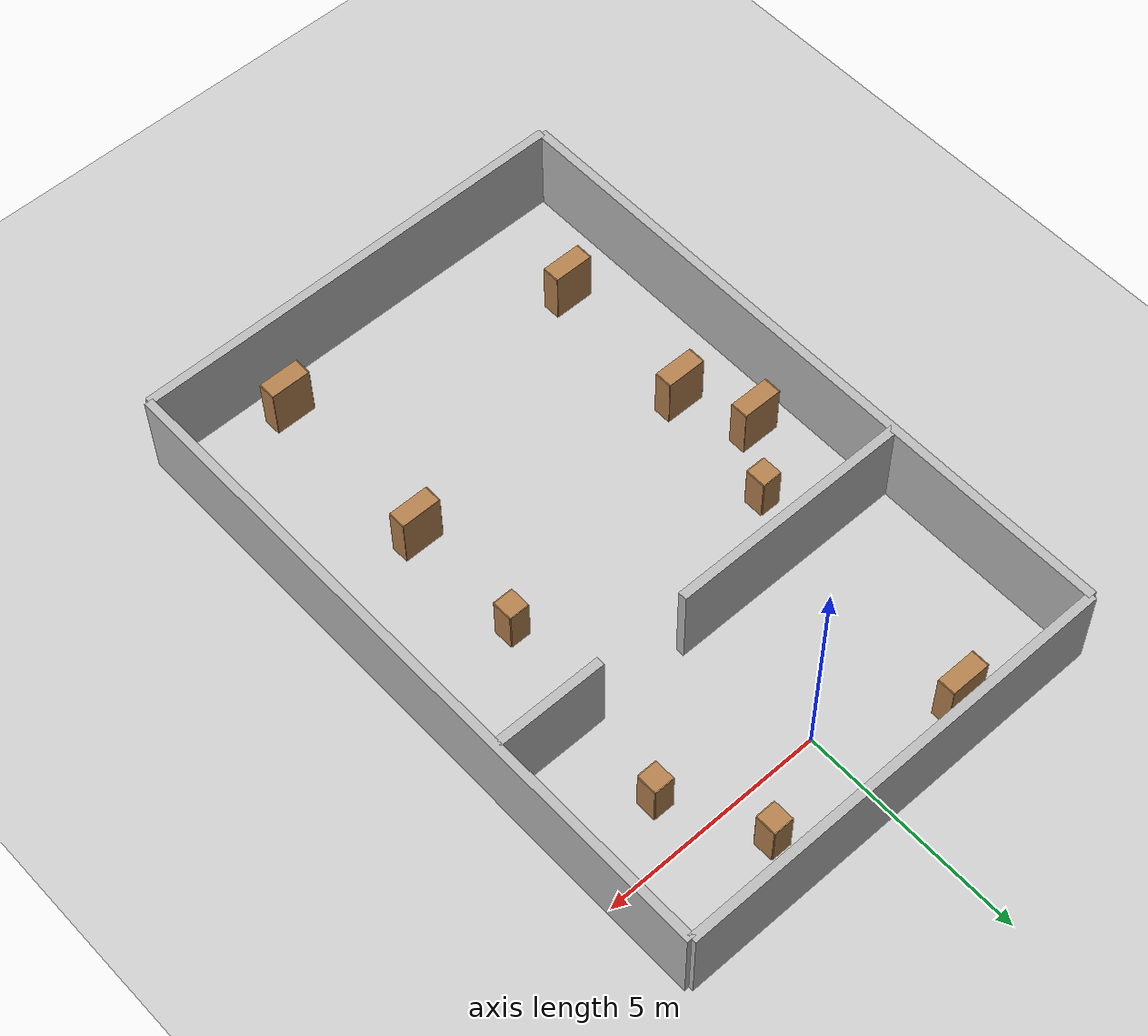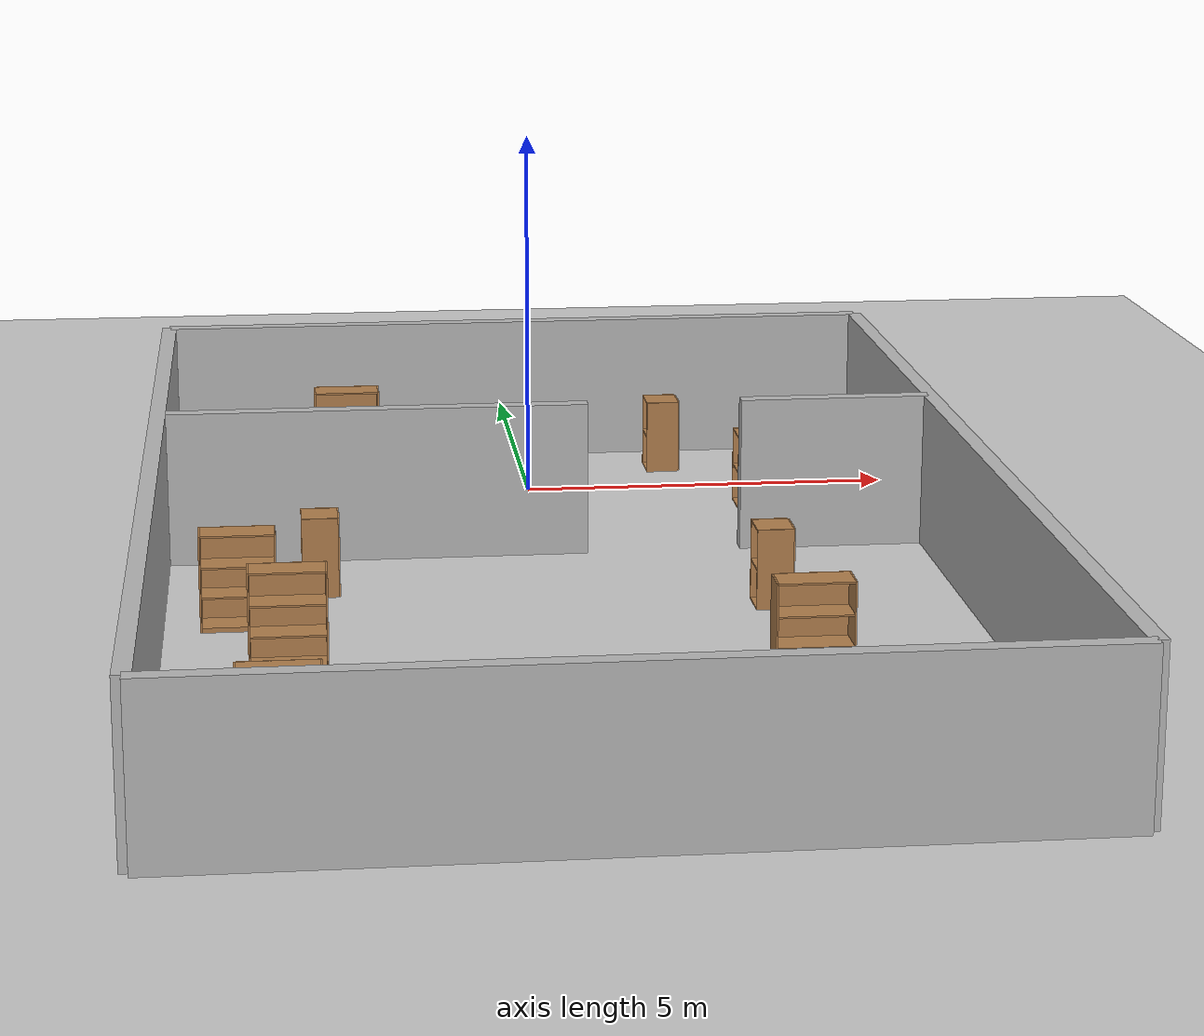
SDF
<sdf version="1.6">
 <world name="default">
  <physics name="default_physics" default="0" type="ode">
   <ode>
    <solver>
     <type>quick</type>
     <iters>20</iters>
     <sor>1</sor>
     <use_dynamic_moi_rescaling>0</use_dynamic_moi_rescaling>
    </solver>
    <constraints>
     <cfm>0</cfm>
     <erp>0.2</erp>
     <contact_max_correcting_vel>100</contact_max_correcting_vel>
     <contact_surface_layer>0</contact_surface_layer>
    </constraints>
   </ode>
   <real_time_update_rate>1000</real_time_update_rate>
   <max_step_size>0.001</max_step_size>
   <real_time_factor>1</real_time_factor>
   <max_contacts>20</max_contacts>
  </physics>
  <light name="sun" type="directional">
   <pose>0 0 10 0 -0 0</pose>
   <diffuse>0.8 0.8 0.8 1</diffuse>
   <specular>0.2 0.2 0.2 1</specular>
   <attenuation>
    <range>1000</range>
    <constant>0.9</constant>
    <linear>0.01</linear>
    <quadratic>0.001</quadratic>
   </attenuation>
   <direction>0.5 0.1 -0.9</direction>
  </light>
  <model name="ground_plane">
   <static>1</static>
   <link name="link">
    <collision name="collision">
     <geometry><plane><normal>0 0 1</normal><size>100 100</size></plane></geometry>
     <surface><friction><ode><mu>100</mu><mu2>50</mu2></ode></friction></surface>
    </collision>
    <visual name="visual">
     <cast_shadows>0</cast_shadows>
     <geometry><plane><normal>0 0 1</normal><size>100 100</size></plane></geometry>
     <material>
      <script><uri>file://media/materials/scripts/gazebo.material</uri><name>Gazebo/Grey</name></script>
     </material>
    </visual>
    <velocity_decay><linear>0</linear><angular>0</angular></velocity_decay>
   </link>
  </model>
  <model name="wall_1_model">
   <pose>0 -13 1 0 -0 0</pose>
   <static>1</static>
   <link name="wall_1_body">
    <inertial>
     <mass>1</mass>
     <inertia><ixx>1</ixx><ixy>0</ixy><ixz>0</ixz><iyy>1</iyy><iyz>0</iyz><izz>1</izz></inertia>
    </inertial>
    <collision name="collision"><geometry><box><size>10 0.2 2</size></box></geometry></collision>
    <visual name="visual"><geometry><box><size>10 0.2 2</size></box></geometry></visual>
    <velocity_decay><linear>0</linear><angular>0</angular></velocity_decay>
   </link>
  </model>
  <model name="wall_2_model">
   <pose>0 2 1 0 -0 0</pose>
   <static>1</static>
   <link name="wall_2_body">
    <inertial>
     <mass>1</mass>
     <inertia><ixx>1</ixx><ixy>0</ixy><ixz>0</ixz><iyy>1</iyy><iyz>0</iyz><izz>1</izz></inertia>
    </inertial>
    <collision name="collision"><geometry><box><size>10 0.2 2</size></box></geometry></collision>
    <visual name="visual"><geometry><box><size>10 0.2 2</size></box></geometry></visual>
    <velocity_decay><linear>0</linear><angular>0</angular></velocity_decay>
   </link>
  </model>
  <model name="wall_3_model">
   <pose>-5 -5.5 1 0 -0 0</pose>
   <static>1</static>
   <link name="wall_3_body">
    <inertial>
     <mass>1</mass>
     <inertia><ixx>1</ixx><ixy>0</ixy><ixz>0</ixz><iyy>1</iyy><iyz>0</iyz><izz>1</izz></inertia>
    </inertial>
    <collision name="collision"><geometry><box><size>0.2 15 2</size></box></geometry></collision>
    <visual name="visual"><geometry><box><size>0.2 15 2</size></box></geometry></visual>
    <velocity_decay><linear>0</linear><angular>0</angular></velocity_decay>
   </link>
  </model>
  <model name="wall_4_model">
   <pose>5 -5.5 1 0 -0 0</pose>
   <static>1</static>
   <link name="wall_4_body">
    <inertial>
     <mass>1</mass>
     <inertia><ixx>1</ixx><ixy>0</ixy><ixz>0</ixz><iyy>1</iyy><iyz>0</iyz><izz>1</izz></inertia>
    </inertial>
    <collision name="collision"><geometry><box><size>0.2 15 2</size></box></geometry></collision>
    <visual name="visual"><geometry><box><size>0.2 15 2</size></box></geometry></visual>
    <velocity_decay><linear>0</linear><angular>0</angular></velocity_decay>
   </link>
  </model>
  <model name="wall_5_model">
   <pose>-2.25 -3 1 0 -0 0</pose>
   <static>1</static>
   <link name="wall_5_body">
    <inertial>
     <mass>1</mass>
     <inertia><ixx>1</ixx><ixy>0</ixy><ixz>0</ixz><iyy>1</iyy><iyz>0</iyz><izz>1</izz></inertia>
    </inertial>
    <collision name="collision"><geometry><box><size>5.5 0.2 2</size></box></geometry></collision>
    <visual name="visual"><geometry><box><size>5.5 0.2 2</size></box></geometry></visual>
    <velocity_decay><linear>0</linear><angular>0</angular></velocity_decay>
   </link>
  </model>
  <model name="wall_6_model">
   <pose>3.75 -3 1 0 -0 0</pose>
   <static>1</static>
   <link name="wall_6_body">
    <inertial>
     <mass>1</mass>
     <inertia><ixx>1</ixx><ixy>0</ixy><ixz>0</ixz><iyy>1</iyy><iyz>0</iyz><izz>1</izz></inertia>
    </inertial>
    <collision name="collision"><geometry><box><size>2.5 0.2 2</size></box></geometry></collision>
    <visual name="visual"><geometry><box><size>2.5 0.2 2</size></box></geometry></visual>
    <velocity_decay><linear>0</linear><angular>0</angular></velocity_decay>
   </link>
  </model>
  <scene><ambient>0.2 0.2 0.2 1</ambient><background>0.7 0.7 0.7 1</background><shadows>1</shadows></scene>
  <model name="cabinet">
   <static>0</static>
   <link name="cabinet_bottom_plate">
    <inertial>
     <pose>0 0 -1 0 -0 0</pose>
     <inertia><ixx>2.05</ixx><ixy>0</ixy><ixz>0</ixz><iyy>2.05</iyy><iyz>0</iyz><izz>2.05</izz></inertia>
     <mass>25</mass>
    </inertial>
    <collision name="cabinet_bottom_plate_geom">
     <pose>0 0 0.01 0 -0 0</pose>
     <geometry><box><size>0.45 0.45 0.02</size></box></geometry>
    </collision>
    <visual name="cabinet_bottom_plate_geom_visual">
     <pose>0 0 0.01 0 -0 0</pose>
     <geometry><box><size>0.45 0.45 0.02</size></box></geometry>
     <material>
      <script><uri>file://media/materials/scripts/gazebo.material</uri><name>Gazebo/Wood</name></script>
     </material>
    </visual>
    <collision name="cabinet_bottom_plate_geom_cabinet_back_plate">
     <pose>0.235 0 0.51 0 -0 0</pose>
     <geometry><box><size>0.02 0.45 1.02</size></box></geometry>
    </collision>
    <visual name="cabinet_bottom_plate_geom_cabinet_back_plate_visual">
     <pose>0.235 0 0.51 0 -0 0</pose>
     <geometry><box><size>0.02 0.45 1.02</size></box></geometry>
     <material>
      <script><uri>file://media/materials/scripts/gazebo.material</uri><name>Gazebo/Wood</name></script>
     </material>
    </visual>
    <collision name="cabinet_bottom_plate_geom_cabinet_left_plate">
     <pose>0 0.235 0.51 0 -0 0</pose>
     <geometry><box><size>0.45 0.02 1.02</size></box></geometry>
    </collision>
    <visual name="cabinet_bottom_plate_geom_cabinet_left_plate_visual">
     <pose>0 0.235 0.51 0 -0 0</pose>
     <geometry><box><size>0.45 0.02 1.02</size></box></geometry>
     <material>
      <script><uri>file://media/materials/scripts/gazebo.material</uri><name>Gazebo/Wood</name></script>
     </material>
    </visual>
    <collision name="cabinet_bottom_plate_geom_cabinet_middle_plate">
     <pose>0 0 0.51 0 -0 0</pose>
     <geometry><box><size>0.45 0.45 0.02</size></box></geometry>
    </collision>
    <visual name="cabinet_bottom_plate_geom_cabinet_middle_plate_visual">
     <pose>0 0 0.51 0 -0 0</pose>
     <geometry><box><size>0.45 0.45 0.02</size></box></geometry>
     <material>
      <script><uri>file://media/materials/scripts/gazebo.material</uri><name>Gazebo/Wood</name></script>
     </material>
    </visual>
    <collision name="cabinet_bottom_plate_geom_cabinet_right_plate">
     <pose>0 -0.235 0.51 0 -0 0</pose>
     <geometry><box><size>0.45 0.02 1.02</size></box></geometry>
    </collision>
    <visual name="cabinet_bottom_plate_geom_cabinet_right_plate_visual">
     <pose>0 -0.235 0.51 0 -0 0</pose>
     <geometry><box><size>0.45 0.02 1.02</size></box></geometry>
     <material>
      <script><uri>file://media/materials/scripts/gazebo.material</uri><name>Gazebo/Wood</name></script>
     </material>
    </visual>
    <collision name="cabinet_bottom_plate_geom_cabinet_top_plate">
     <pose>0 0 1.01 0 -0 0</pose>
     <geometry><box><size>0.45 0.45 0.02</size></box></geometry>
    </collision>
    <visual name="cabinet_bottom_plate_geom_cabinet_top_plate_visual">
     <pose>0 0 1.01 0 -0 0</pose>
     <geometry><box><size>0.45 0.45 0.02</size></box></geometry>
     <material>
      <script><uri>file://media/materials/scripts/gazebo.material</uri><name>Gazebo/Wood</name></script>
     </material>
    </visual>
    <velocity_decay><linear>0</linear><angular>0</angular></velocity_decay>
   </link>
   <pose>1.99969 1.00001 0 -1e-06 -0 0.002084</pose>
  </model>
  <model name="cabinet_0">
   <static>0</static>
   <link name="cabinet_bottom_plate">
    <inertial>
     <pose>0 0 -1 0 -0 0</pose>
     <inertia><ixx>2.05</ixx><ixy>0</ixy><ixz>0</ixz><iyy>2.05</iyy><iyz>0</iyz><izz>2.05</izz></inertia>
     <mass>25</mass>
    </inertial>
    <collision name="cabinet_bottom_plate_geom">
     <pose>0 0 0.01 0 -0 0</pose>
     <geometry><box><size>0.45 0.45 0.02</size></box></geometry>
    </collision>
    <visual name="cabinet_bottom_plate_geom_visual">
     <pose>0 0 0.01 0 -0 0</pose>
     <geometry><box><size>0.45 0.45 0.02</size></box></geometry>
     <material>
      <script><uri>file://media/materials/scripts/gazebo.material</uri><name>Gazebo/Wood</name></script>
     </material>
    </visual>
    <collision name="cabinet_bottom_plate_geom_cabinet_back_plate">
     <pose>0.235 0 0.51 0 -0 0</pose>
     <geometry><box><size>0.02 0.45 1.02</size></box></geometry>
    </collision>
    <visual name="cabinet_bottom_plate_geom_cabinet_back_plate_visual">
     <pose>0.235 0 0.51 0 -0 0</pose>
     <geometry><box><size>0.02 0.45 1.02</size></box></geometry>
     <material>
      <script><uri>file://media/materials/scripts/gazebo.material</uri><name>Gazebo/Wood</name></script>
     </material>
    </visual>
    <collision name="cabinet_bottom_plate_geom_cabinet_left_plate">
     <pose>0 0.235 0.51 0 -0 0</pose>
     <geometry><box><size>0.45 0.02 1.02</size></box></geometry>
    </collision>
    <visual name="cabinet_bottom_plate_geom_cabinet_left_plate_visual">
     <pose>0 0.235 0.51 0 -0 0</pose>
     <geometry><box><size>0.45 0.02 1.02</size></box></geometry>
     <material>
      <script><uri>file://media/materials/scripts/gazebo.material</uri><name>Gazebo/Wood</name></script>
     </material>
    </visual>
    <collision name="cabinet_bottom_plate_geom_cabinet_middle_plate">
     <pose>0 0 0.51 0 -0 0</pose>
     <geometry><box><size>0.45 0.45 0.02</size></box></geometry>
    </collision>
    <visual name="cabinet_bottom_plate_geom_cabinet_middle_plate_visual">
     <pose>0 0 0.51 0 -0 0</pose>
     <geometry><box><size>0.45 0.45 0.02</size></box></geometry>
     <material>
      <script><uri>file://media/materials/scripts/gazebo.material</uri><name>Gazebo/Wood</name></script>
     </material>
    </visual>
    <collision name="cabinet_bottom_plate_geom_cabinet_right_plate">
     <pose>0 -0.235 0.51 0 -0 0</pose>
     <geometry><box><size>0.45 0.02 1.02</size></box></geometry>
    </collision>
    <visual name="cabinet_bottom_plate_geom_cabinet_right_plate_visual">
     <pose>0 -0.235 0.51 0 -0 0</pose>
     <geometry><box><size>0.45 0.02 1.02</size></box></geometry>
     <material>
      <script><uri>file://media/materials/scripts/gazebo.material</uri><name>Gazebo/Wood</name></script>
     </material>
    </visual>
    <collision name="cabinet_bottom_plate_geom_cabinet_top_plate">
     <pose>0 0 1.01 0 -0 0</pose>
     <geometry><box><size>0.45 0.45 0.02</size></box></geometry>
    </collision>
    <visual name="cabinet_bottom_plate_geom_cabinet_top_plate_visual">
     <pose>0 0 1.01 0 -0 0</pose>
     <geometry><box><size>0.45 0.45 0.02</size></box></geometry>
     <material>
      <script><uri>file://media/materials/scripts/gazebo.material</uri><name>Gazebo/Wood</name></script>
     </material>
    </visual>
    <velocity_decay><linear>0</linear><angular>0</angular></velocity_decay>
   </link>
   <pose>2.51542 -5.43949 0 -1e-06 -0 0.002084</pose>
  </model>
  <model name="bookshelf_1">
   <static>0</static>
   <link name="link">
    <inertial>
     <mass>1</mass>
     <inertia><ixx>1</ixx><ixy>0</ixy><ixz>0</ixz><iyy>1</iyy><iyz>0</iyz><izz>1</izz></inertia>
    </inertial>
    <collision name="back">
     <pose>0 0.005 0.6 0 -0 0</pose>
     <geometry><box><size>0.9 0.01 1.2</size></box></geometry>
    </collision>
    <visual name="visual1">
     <pose>0 0.005 0.6 0 -0 0</pose>
     <geometry><box><size>0.9 0.01 1.2</size></box></geometry>
     <material>
      <script><uri>file://media/materials/scripts/gazebo.material</uri><name>Gazebo/Wood</name></script>
     </material>
    </visual>
    <collision name="left_side">
     <pose>0.45 -0.195 0.6 0 -0 0</pose>
     <geometry><box><size>0.02 0.4 1.2</size></box></geometry>
    </collision>
    <visual name="visual2">
     <pose>0.45 -0.195 0.6 0 -0 0</pose>
     <geometry><box><size>0.02 0.4 1.2</size></box></geometry>
     <material>
      <script><uri>file://media/materials/scripts/gazebo.material</uri><name>Gazebo/Wood</name></script>
     </material>
    </visual>
    <collision name="right_side">
     <pose>-0.45 -0.195 0.6 0 -0 0</pose>
     <geometry><box><size>0.02 0.4 1.2</size></box></geometry>
    </collision>
    <visual name="visual3">
     <pose>-0.45 -0.195 0.6 0 -0 0</pose>
     <geometry><box><size>0.02 0.4 1.2</size></box></geometry>
     <material>
      <script><uri>file://media/materials/scripts/gazebo.material</uri><name>Gazebo/Wood</name></script>
     </material>
    </visual>
    <collision name="bottom">
     <pose>0 -0.195 0.03 0 -0 0</pose>
     <geometry><box><size>0.88 0.4 0.06</size></box></geometry>
    </collision>
    <visual name="visual4">
     <pose>0 -0.195 0.03 0 -0 0</pose>
     <geometry><box><size>0.88 0.4 0.06</size></box></geometry>
     <material>
      <script><uri>file://media/materials/scripts/gazebo.material</uri><name>Gazebo/Wood</name></script>
     </material>
    </visual>
    <collision name="top">
     <pose>0 -0.195 1.19 0 -0 0</pose>
     <geometry><box><size>0.88 0.4 0.02</size></box></geometry>
    </collision>
    <visual name="visual5">
     <pose>0 -0.195 1.19 0 -0 0</pose>
     <geometry><box><size>0.88 0.4 0.02</size></box></geometry>
     <material>
      <script><uri>file://media/materials/scripts/gazebo.material</uri><name>Gazebo/Wood</name></script>
     </material>
    </visual>
    <collision name="low_shelf">
     <pose>0 -0.195 0.43 0 -0 0</pose>
     <geometry><box><size>0.88 0.4 0.02</size></box></geometry>
    </collision>
    <visual name="visual6">
     <pose>0 -0.195 0.43 0 -0 0</pose>
     <geometry><box><size>0.88 0.4 0.02</size></box></geometry>
     <material>
      <script><uri>file://media/materials/scripts/gazebo.material</uri><name>Gazebo/Wood</name></script>
     </material>
    </visual>
    <collision name="high_shelf">
     <pose>0 -0.195 0.8 0 -0 0</pose>
     <geometry><box><size>0.88 0.4 0.02</size></box></geometry>
    </collision>
    <visual name="visual7">
     <pose>0 -0.195 0.8 0 -0 0</pose>
     <geometry><box><size>0.88 0.4 0.02</size></box></geometry>
     <material>
      <script><uri>file://media/materials/scripts/gazebo.material</uri><name>Gazebo/Wood</name></script>
     </material>
    </visual>
    <velocity_decay><linear>0</linear><angular>0</angular></velocity_decay>
   </link>
   <pose>-2.49816 1.46785 1e-06 0 -1e-06 0</pose>
  </model>
  <model name="cabinet_1">
   <static>0</static>
   <link name="cabinet_bottom_plate">
    <inertial>
     <pose>0 0 -1 0 -0 0</pose>
     <inertia><ixx>2.05</ixx><ixy>0</ixy><ixz>0</ixz><iyy>2.05</iyy><iyz>0</iyz><izz>2.05</izz></inertia>
     <mass>25</mass>
    </inertial>
    <collision name="cabinet_bottom_plate_geom">
     <pose>0 0 0.01 0 -0 0</pose>
     <geometry><box><size>0.45 0.45 0.02</size></box></geometry>
    </collision>
    <visual name="cabinet_bottom_plate_geom_visual">
     <pose>0 0 0.01 0 -0 0</pose>
     <geometry><box><size>0.45 0.45 0.02</size></box></geometry>
     <material>
      <script><uri>file://media/materials/scripts/gazebo.material</uri><name>Gazebo/Wood</name></script>
     </material>
    </visual>
    <collision name="cabinet_bottom_plate_geom_cabinet_back_plate">
     <pose>0.235 0 0.51 0 -0 0</pose>
     <geometry><box><size>0.02 0.45 1.02</size></box></geometry>
    </collision>
    <visual name="cabinet_bottom_plate_geom_cabinet_back_plate_visual">
     <pose>0.235 0 0.51 0 -0 0</pose>
     <geometry><box><size>0.02 0.45 1.02</size></box></geometry>
     <material>
      <script><uri>file://media/materials/scripts/gazebo.material</uri><name>Gazebo/Wood</name></script>
     </material>
    </visual>
    <collision name="cabinet_bottom_plate_geom_cabinet_left_plate">
     <pose>0 0.235 0.51 0 -0 0</pose>
     <geometry><box><size>0.45 0.02 1.02</size></box></geometry>
    </collision>
    <visual name="cabinet_bottom_plate_geom_cabinet_left_plate_visual">
     <pose>0 0.235 0.51 0 -0 0</pose>
     <geometry><box><size>0.45 0.02 1.02</size></box></geometry>
     <material>
      <script><uri>file://media/materials/scripts/gazebo.material</uri><name>Gazebo/Wood</name></script>
     </material>
    </visual>
    <collision name="cabinet_bottom_plate_geom_cabinet_middle_plate">
     <pose>0 0 0.51 0 -0 0</pose>
     <geometry><box><size>0.45 0.45 0.02</size></box></geometry>
    </collision>
    <visual name="cabinet_bottom_plate_geom_cabinet_middle_plate_visual">
     <pose>0 0 0.51 0 -0 0</pose>
     <geometry><box><size>0.45 0.45 0.02</size></box></geometry>
     <material>
      <script><uri>file://media/materials/scripts/gazebo.material</uri><name>Gazebo/Wood</name></script>
     </material>
    </visual>
    <collision name="cabinet_bottom_plate_geom_cabinet_right_plate">
     <pose>0 -0.235 0.51 0 -0 0</pose>
     <geometry><box><size>0.45 0.02 1.02</size></box></geometry>
    </collision>
    <visual name="cabinet_bottom_plate_geom_cabinet_right_plate_visual">
     <pose>0 -0.235 0.51 0 -0 0</pose>
     <geometry><box><size>0.45 0.02 1.02</size></box></geometry>
     <material>
      <script><uri>file://media/materials/scripts/gazebo.material</uri><name>Gazebo/Wood</name></script>
     </material>
    </visual>
    <collision name="cabinet_bottom_plate_geom_cabinet_top_plate">
     <pose>0 0 1.01 0 -0 0</pose>
     <geometry><box><size>0.45 0.45 0.02</size></box></geometry>
    </collision>
    <visual name="cabinet_bottom_plate_geom_cabinet_top_plate_visual">
     <pose>0 0 1.01 0 -0 0</pose>
     <geometry><box><size>0.45 0.45 0.02</size></box></geometry>
     <material>
      <script><uri>file://media/materials/scripts/gazebo.material</uri><name>Gazebo/Wood</name></script>
     </material>
    </visual>
    <velocity_decay><linear>0</linear><angular>0</angular></velocity_decay>
   </link>
   <pose>-3.00031 -4.40005 0 -1e-06 -0 0.002084</pose>
  </model>
  <model name="bookshelf_2">
   <static>0</static>
   <link name="link">
    <inertial>
     <mass>1</mass>
     <inertia><ixx>1</ixx><ixy>0</ixy><ixz>0</ixz><iyy>1</iyy><iyz>0</iyz><izz>1</izz></inertia>
    </inertial>
    <collision name="back">
     <pose>0 0.005 0.6 0 -0 0</pose>
     <geometry><box><size>0.9 0.01 1.2</size></box></geometry>
    </collision>
    <visual name="visual1">
     <pose>0 0.005 0.6 0 -0 0</pose>
     <geometry><box><size>0.9 0.01 1.2</size></box></geometry>
     <material>
      <script><uri>file://media/materials/scripts/gazebo.material</uri><name>Gazebo/Wood</name></script>
     </material>
    </visual>
    <collision name="left_side">
     <pose>0.45 -0.195 0.6 0 -0 0</pose>
     <geometry><box><size>0.02 0.4 1.2</size></box></geometry>
    </collision>
    <visual name="visual2">
     <pose>0.45 -0.195 0.6 0 -0 0</pose>
     <geometry><box><size>0.02 0.4 1.2</size></box></geometry>
     <material>
      <script><uri>file://media/materials/scripts/gazebo.material</uri><name>Gazebo/Wood</name></script>
     </material>
    </visual>
    <collision name="right_side">
     <pose>-0.45 -0.195 0.6 0 -0 0</pose>
     <geometry><box><size>0.02 0.4 1.2</size></box></geometry>
    </collision>
    <visual name="visual3">
     <pose>-0.45 -0.195 0.6 0 -0 0</pose>
     <geometry><box><size>0.02 0.4 1.2</size></box></geometry>
     <material>
      <script><uri>file://media/materials/scripts/gazebo.material</uri><name>Gazebo/Wood</name></script>
     </material>
    </visual>
    <collision name="bottom">
     <pose>0 -0.195 0.03 0 -0 0</pose>
     <geometry><box><size>0.88 0.4 0.06</size></box></geometry>
    </collision>
    <visual name="visual4">
     <pose>0 -0.195 0.03 0 -0 0</pose>
     <geometry><box><size>0.88 0.4 0.06</size></box></geometry>
     <material>
      <script><uri>file://media/materials/scripts/gazebo.material</uri><name>Gazebo/Wood</name></script>
     </material>
    </visual>
    <collision name="top">
     <pose>0 -0.195 1.19 0 -0 0</pose>
     <geometry><box><size>0.88 0.4 0.02</size></box></geometry>
    </collision>
    <visual name="visual5">
     <pose>0 -0.195 1.19 0 -0 0</pose>
     <geometry><box><size>0.88 0.4 0.02</size></box></geometry>
     <material>
      <script><uri>file://media/materials/scripts/gazebo.material</uri><name>Gazebo/Wood</name></script>
     </material>
    </visual>
    <collision name="low_shelf">
     <pose>0 -0.195 0.43 0 -0 0</pose>
     <geometry><box><size>0.88 0.4 0.02</size></box></geometry>
    </collision>
    <visual name="visual6">
     <pose>0 -0.195 0.43 0 -0 0</pose>
     <geometry><box><size>0.88 0.4 0.02</size></box></geometry>
     <material>
      <script><uri>file://media/materials/scripts/gazebo.material</uri><name>Gazebo/Wood</name></script>
     </material>
    </visual>
    <collision name="high_shelf">
     <pose>0 -0.195 0.8 0 -0 0</pose>
     <geometry><box><size>0.88 0.4 0.02</size></box></geometry>
    </collision>
    <visual name="visual7">
     <pose>0 -0.195 0.8 0 -0 0</pose>
     <geometry><box><size>0.88 0.4 0.02</size></box></geometry>
     <material>
      <script><uri>file://media/materials/scripts/gazebo.material</uri><name>Gazebo/Wood</name></script>
     </material>
    </visual>
    <velocity_decay><linear>0</linear><angular>0</angular></velocity_decay>
   </link>
   <pose>-3.41849 -7 -1e-06 -8e-06 -3e-06 0</pose>
  </model>
  <model name="cabinet_3">
   <static>0</static>
   <link name="cabinet_bottom_plate">
    <inertial>
     <pose>0 0 -1 0 -0 0</pose>
     <inertia><ixx>2.05</ixx><ixy>0</ixy><ixz>0</ixz><iyy>2.05</iyy><iyz>0</iyz><izz>2.05</izz></inertia>
     <mass>25</mass>
    </inertial>
    <collision name="cabinet_bottom_plate_geom">
     <pose>0 0 0.01 0 -0 0</pose>
     <geometry><box><size>0.45 0.45 0.02</size></box></geometry>
    </collision>
    <visual name="cabinet_bottom_plate_geom_visual">
     <pose>0 0 0.01 0 -0 0</pose>
     <geometry><box><size>0.45 0.45 0.02</size></box></geometry>
     <material>
      <script><uri>file://media/materials/scripts/gazebo.material</uri><name>Gazebo/Wood</name></script>
     </material>
    </visual>
    <collision name="cabinet_bottom_plate_geom_cabinet_back_plate">
     <pose>0.235 0 0.51 0 -0 0</pose>
     <geometry><box><size>0.02 0.45 1.02</size></box></geometry>
    </collision>
    <visual name="cabinet_bottom_plate_geom_cabinet_back_plate_visual">
     <pose>0.235 0 0.51 0 -0 0</pose>
     <geometry><box><size>0.02 0.45 1.02</size></box></geometry>
     <material>
      <script><uri>file://media/materials/scripts/gazebo.material</uri><name>Gazebo/Wood</name></script>
     </material>
    </visual>
    <collision name="cabinet_bottom_plate_geom_cabinet_left_plate">
     <pose>0 0.235 0.51 0 -0 0</pose>
     <geometry><box><size>0.45 0.02 1.02</size></box></geometry>
    </collision>
    <visual name="cabinet_bottom_plate_geom_cabinet_left_plate_visual">
     <pose>0 0.235 0.51 0 -0 0</pose>
     <geometry><box><size>0.45 0.02 1.02</size></box></geometry>
     <material>
      <script><uri>file://media/materials/scripts/gazebo.material</uri><name>Gazebo/Wood</name></script>
     </material>
    </visual>
    <collision name="cabinet_bottom_plate_geom_cabinet_middle_plate">
     <pose>0 0 0.51 0 -0 0</pose>
     <geometry><box><size>0.45 0.45 0.02</size></box></geometry>
    </collision>
    <visual name="cabinet_bottom_plate_geom_cabinet_middle_plate_visual">
     <pose>0 0 0.51 0 -0 0</pose>
     <geometry><box><size>0.45 0.45 0.02</size></box></geometry>
     <material>
      <script><uri>file://media/materials/scripts/gazebo.material</uri><name>Gazebo/Wood</name></script>
     </material>
    </visual>
    <collision name="cabinet_bottom_plate_geom_cabinet_right_plate">
     <pose>0 -0.235 0.51 0 -0 0</pose>
     <geometry><box><size>0.45 0.02 1.02</size></box></geometry>
    </collision>
    <visual name="cabinet_bottom_plate_geom_cabinet_right_plate_visual">
     <pose>0 -0.235 0.51 0 -0 0</pose>
     <geometry><box><size>0.45 0.02 1.02</size></box></geometry>
     <material>
      <script><uri>file://media/materials/scripts/gazebo.material</uri><name>Gazebo/Wood</name></script>
     </material>
    </visual>
    <collision name="cabinet_bottom_plate_geom_cabinet_top_plate">
     <pose>0 0 1.01 0 -0 0</pose>
     <geometry><box><size>0.45 0.45 0.02</size></box></geometry>
    </collision>
    <visual name="cabinet_bottom_plate_geom_cabinet_top_plate_visual">
     <pose>0 0 1.01 0 -0 0</pose>
     <geometry><box><size>0.45 0.45 0.02</size></box></geometry>
     <material>
      <script><uri>file://media/materials/scripts/gazebo.material</uri><name>Gazebo/Wood</name></script>
     </material>
    </visual>
    <velocity_decay><linear>0</linear><angular>0</angular></velocity_decay>
   </link>
   <pose>2.99969 -0.999991 0 -1e-06 -0 0.002084</pose>
  </model>
  <model name="bookshelf_3">
   <static>0</static>
   <link name="link">
    <inertial>
     <mass>1</mass>
     <inertia><ixx>1</ixx><ixy>0</ixy><ixz>0</ixz><iyy>1</iyy><iyz>0</iyz><izz>1</izz></inertia>
    </inertial>
    <collision name="back">
     <pose>0 0.005 0.6 0 -0 0</pose>
     <geometry><box><size>0.9 0.01 1.2</size></box></geometry>
    </collision>
    <visual name="visual1">
     <pose>0 0.005 0.6 0 -0 0</pose>
     <geometry><box><size>0.9 0.01 1.2</size></box></geometry>
     <material>
      <script><uri>file://media/materials/scripts/gazebo.material</uri><name>Gazebo/Wood</name></script>
     </material>
    </visual>
    <collision name="left_side">
     <pose>0.45 -0.195 0.6 0 -0 0</pose>
     <geometry><box><size>0.02 0.4 1.2</size></box></geometry>
    </collision>
    <visual name="visual2">
     <pose>0.45 -0.195 0.6 0 -0 0</pose>
     <geometry><box><size>0.02 0.4 1.2</size></box></geometry>
     <material>
      <script><uri>file://media/materials/scripts/gazebo.material</uri><name>Gazebo/Wood</name></script>
     </material>
    </visual>
    <collision name="right_side">
     <pose>-0.45 -0.195 0.6 0 -0 0</pose>
     <geometry><box><size>0.02 0.4 1.2</size></box></geometry>
    </collision>
    <visual name="visual3">
     <pose>-0.45 -0.195 0.6 0 -0 0</pose>
     <geometry><box><size>0.02 0.4 1.2</size></box></geometry>
     <material>
      <script><uri>file://media/materials/scripts/gazebo.material</uri><name>Gazebo/Wood</name></script>
     </material>
    </visual>
    <collision name="bottom">
     <pose>0 -0.195 0.03 0 -0 0</pose>
     <geometry><box><size>0.88 0.4 0.06</size></box></geometry>
    </collision>
    <visual name="visual4">
     <pose>0 -0.195 0.03 0 -0 0</pose>
     <geometry><box><size>0.88 0.4 0.06</size></box></geometry>
     <material>
      <script><uri>file://media/materials/scripts/gazebo.material</uri><name>Gazebo/Wood</name></script>
     </material>
    </visual>
    <collision name="top">
     <pose>0 -0.195 1.19 0 -0 0</pose>
     <geometry><box><size>0.88 0.4 0.02</size></box></geometry>
    </collision>
    <visual name="visual5">
     <pose>0 -0.195 1.19 0 -0 0</pose>
     <geometry><box><size>0.88 0.4 0.02</size></box></geometry>
     <material>
      <script><uri>file://media/materials/scripts/gazebo.material</uri><name>Gazebo/Wood</name></script>
     </material>
    </visual>
    <collision name="low_shelf">
     <pose>0 -0.195 0.43 0 -0 0</pose>
     <geometry><box><size>0.88 0.4 0.02</size></box></geometry>
    </collision>
    <visual name="visual6">
     <pose>0 -0.195 0.43 0 -0 0</pose>
     <geometry><box><size>0.88 0.4 0.02</size></box></geometry>
     <material>
      <script><uri>file://media/materials/scripts/gazebo.material</uri><name>Gazebo/Wood</name></script>
     </material>
    </visual>
    <collision name="high_shelf">
     <pose>0 -0.195 0.8 0 -0 0</pose>
     <geometry><box><size>0.88 0.4 0.02</size></box></geometry>
    </collision>
    <visual name="visual7">
     <pose>0 -0.195 0.8 0 -0 0</pose>
     <geometry><box><size>0.88 0.4 0.02</size></box></geometry>
     <material>
      <script><uri>file://media/materials/scripts/gazebo.material</uri><name>Gazebo/Wood</name></script>
     </material>
    </visual>
    <velocity_decay><linear>0</linear><angular>0</angular></velocity_decay>
   </link>
   <pose>2.45055 -12 1e-06 -6.4e-05 0 0</pose>
  </model>
  <model name="bookshelf_4">
   <static>0</static>
   <link name="link">
    <inertial>
     <mass>1</mass>
     <inertia><ixx>1</ixx><ixy>0</ixy><ixz>0</ixz><iyy>1</iyy><iyz>0</iyz><izz>1</izz></inertia>
    </inertial>
    <collision name="back">
     <pose>0 0.005 0.6 0 -0 0</pose>
     <geometry><box><size>0.9 0.01 1.2</size></box></geometry>
    </collision>
    <visual name="visual1">
     <pose>0 0.005 0.6 0 -0 0</pose>
     <geometry><box><size>0.9 0.01 1.2</size></box></geometry>
     <material>
      <script><uri>file://media/materials/scripts/gazebo.material</uri><name>Gazebo/Wood</name></script>
     </material>
    </visual>
    <collision name="left_side">
     <pose>0.45 -0.195 0.6 0 -0 0</pose>
     <geometry><box><size>0.02 0.4 1.2</size></box></geometry>
    </collision>
    <visual name="visual2">
     <pose>0.45 -0.195 0.6 0 -0 0</pose>
     <geometry><box><size>0.02 0.4 1.2</size></box></geometry>
     <material>
      <script><uri>file://media/materials/scripts/gazebo.material</uri><name>Gazebo/Wood</name></script>
     </material>
    </visual>
    <collision name="right_side">
     <pose>-0.45 -0.195 0.6 0 -0 0</pose>
     <geometry><box><size>0.02 0.4 1.2</size></box></geometry>
    </collision>
    <visual name="visual3">
     <pose>-0.45 -0.195 0.6 0 -0 0</pose>
     <geometry><box><size>0.02 0.4 1.2</size></box></geometry>
     <material>
      <script><uri>file://media/materials/scripts/gazebo.material</uri><name>Gazebo/Wood</name></script>
     </material>
    </visual>
    <collision name="bottom">
     <pose>0 -0.195 0.03 0 -0 0</pose>
     <geometry><box><size>0.88 0.4 0.06</size></box></geometry>
    </collision>
    <visual name="visual4">
     <pose>0 -0.195 0.03 0 -0 0</pose>
     <geometry><box><size>0.88 0.4 0.06</size></box></geometry>
     <material>
      <script><uri>file://media/materials/scripts/gazebo.material</uri><name>Gazebo/Wood</name></script>
     </material>
    </visual>
    <collision name="top">
     <pose>0 -0.195 1.19 0 -0 0</pose>
     <geometry><box><size>0.88 0.4 0.02</size></box></geometry>
    </collision>
    <visual name="visual5">
     <pose>0 -0.195 1.19 0 -0 0</pose>
     <geometry><box><size>0.88 0.4 0.02</size></box></geometry>
     <material>
      <script><uri>file://media/materials/scripts/gazebo.material</uri><name>Gazebo/Wood</name></script>
     </material>
    </visual>
    <collision name="low_shelf">
     <pose>0 -0.195 0.43 0 -0 0</pose>
     <geometry><box><size>0.88 0.4 0.02</size></box></geometry>
    </collision>
    <visual name="visual6">
     <pose>0 -0.195 0.43 0 -0 0</pose>
     <geometry><box><size>0.88 0.4 0.02</size></box></geometry>
     <material>
      <script><uri>file://media/materials/scripts/gazebo.material</uri><name>Gazebo/Wood</name></script>
     </material>
    </visual>
    <collision name="high_shelf">
     <pose>0 -0.195 0.8 0 -0 0</pose>
     <geometry><box><size>0.88 0.4 0.02</size></box></geometry>
    </collision>
    <visual name="visual7">
     <pose>0 -0.195 0.8 0 -0 0</pose>
     <geometry><box><size>0.88 0.4 0.02</size></box></geometry>
     <material>
      <script><uri>file://media/materials/scripts/gazebo.material</uri><name>Gazebo/Wood</name></script>
     </material>
    </visual>
    <velocity_decay><linear>0</linear><angular>0</angular></velocity_decay>
   </link>
   <pose>2.51316 -8 -1e-06 -1.1e-05 -3e-06 0</pose>
  </model>
  <model name="bookshelf_5">
   <static>0</static>
   <link name="link">
    <inertial>
     <mass>1</mass>
     <inertia><ixx>1</ixx><ixy>0</ixy><ixz>0</ixz><iyy>1</iyy><iyz>0</iyz><izz>1</izz></inertia>
    </inertial>
    <collision name="back">
     <pose>0 0.005 0.6 0 -0 0</pose>
     <geometry><box><size>0.9 0.01 1.2</size></box></geometry>
    </collision>
    <visual name="visual1">
     <pose>0 0.005 0.6 0 -0 0</pose>
     <geometry><box><size>0.9 0.01 1.2</size></box></geometry>
     <material>
      <script><uri>file://media/materials/scripts/gazebo.material</uri><name>Gazebo/Wood</name></script>
     </material>
    </visual>
    <collision name="left_side">
     <pose>0.45 -0.195 0.6 0 -0 0</pose>
     <geometry><box><size>0.02 0.4 1.2</size></box></geometry>
    </collision>
    <visual name="visual2">
     <pose>0.45 -0.195 0.6 0 -0 0</pose>
     <geometry><box><size>0.02 0.4 1.2</size></box></geometry>
     <material>
      <script><uri>file://media/materials/scripts/gazebo.material</uri><name>Gazebo/Wood</name></script>
     </material>
    </visual>
    <collision name="right_side">
     <pose>-0.45 -0.195 0.6 0 -0 0</pose>
     <geometry><box><size>0.02 0.4 1.2</size></box></geometry>
    </collision>
    <visual name="visual3">
     <pose>-0.45 -0.195 0.6 0 -0 0</pose>
     <geometry><box><size>0.02 0.4 1.2</size></box></geometry>
     <material>
      <script><uri>file://media/materials/scripts/gazebo.material</uri><name>Gazebo/Wood</name></script>
     </material>
    </visual>
    <collision name="bottom">
     <pose>0 -0.195 0.03 0 -0 0</pose>
     <geometry><box><size>0.88 0.4 0.06</size></box></geometry>
    </collision>
    <visual name="visual4">
     <pose>0 -0.195 0.03 0 -0 0</pose>
     <geometry><box><size>0.88 0.4 0.06</size></box></geometry>
     <material>
      <script><uri>file://media/materials/scripts/gazebo.material</uri><name>Gazebo/Wood</name></script>
     </material>
    </visual>
    <collision name="top">
     <pose>0 -0.195 1.19 0 -0 0</pose>
     <geometry><box><size>0.88 0.4 0.02</size></box></geometry>
    </collision>
    <visual name="visual5">
     <pose>0 -0.195 1.19 0 -0 0</pose>
     <geometry><box><size>0.88 0.4 0.02</size></box></geometry>
     <material>
      <script><uri>file://media/materials/scripts/gazebo.material</uri><name>Gazebo/Wood</name></script>
     </material>
    </visual>
    <collision name="low_shelf">
     <pose>0 -0.195 0.43 0 -0 0</pose>
     <geometry><box><size>0.88 0.4 0.02</size></box></geometry>
    </collision>
    <visual name="visual6">
     <pose>0 -0.195 0.43 0 -0 0</pose>
     <geometry><box><size>0.88 0.4 0.02</size></box></geometry>
     <material>
      <script><uri>file://media/materials/scripts/gazebo.material</uri><name>Gazebo/Wood</name></script>
     </material>
    </visual>
    <collision name="high_shelf">
     <pose>0 -0.195 0.8 0 -0 0</pose>
     <geometry><box><size>0.88 0.4 0.02</size></box></geometry>
    </collision>
    <visual name="visual7">
     <pose>0 -0.195 0.8 0 -0 0</pose>
     <geometry><box><size>0.88 0.4 0.02</size></box></geometry>
     <material>
      <script><uri>file://media/materials/scripts/gazebo.material</uri><name>Gazebo/Wood</name></script>
     </material>
    </visual>
    <velocity_decay><linear>0</linear><angular>0</angular></velocity_decay>
   </link>
   <pose>-3.53929 -10.4222 1e-06 -1.3e-05 1e-06 0</pose>
  </model>
  <model name="bookshelf_6">
   <static>0</static>
   <link name="link">
    <inertial>
     <mass>1</mass>
     <inertia><ixx>1</ixx><ixy>0</ixy><ixz>0</ixz><iyy>1</iyy><iyz>0</iyz><izz>1</izz></inertia>
    </inertial>
    <collision name="back">
     <pose>0 0.005 0.6 0 -0 0</pose>
     <geometry><box><size>0.9 0.01 1.2</size></box></geometry>
    </collision>
    <visual name="visual1">
     <pose>0 0.005 0.6 0 -0 0</pose>
     <geometry><box><size>0.9 0.01 1.2</size></box></geometry>
     <material>
      <script><uri>file://media/materials/scripts/gazebo.material</uri><name>Gazebo/Wood</name></script>
     </material>
    </visual>
    <collision name="left_side">
     <pose>0.45 -0.195 0.6 0 -0 0</pose>
     <geometry><box><size>0.02 0.4 1.2</size></box></geometry>
    </collision>
    <visual name="visual2">
     <pose>0.45 -0.195 0.6 0 -0 0</pose>
     <geometry><box><size>0.02 0.4 1.2</size></box></geometry>
     <material>
      <script><uri>file://media/materials/scripts/gazebo.material</uri><name>Gazebo/Wood</name></script>
     </material>
    </visual>
    <collision name="right_side">
     <pose>-0.45 -0.195 0.6 0 -0 0</pose>
     <geometry><box><size>0.02 0.4 1.2</size></box></geometry>
    </collision>
    <visual name="visual3">
     <pose>-0.45 -0.195 0.6 0 -0 0</pose>
     <geometry><box><size>0.02 0.4 1.2</size></box></geometry>
     <material>
      <script><uri>file://media/materials/scripts/gazebo.material</uri><name>Gazebo/Wood</name></script>
     </material>
    </visual>
    <collision name="bottom">
     <pose>0 -0.195 0.03 0 -0 0</pose>
     <geometry><box><size>0.88 0.4 0.06</size></box></geometry>
    </collision>
    <visual name="visual4">
     <pose>0 -0.195 0.03 0 -0 0</pose>
     <geometry><box><size>0.88 0.4 0.06</size></box></geometry>
     <material>
      <script><uri>file://media/materials/scripts/gazebo.material</uri><name>Gazebo/Wood</name></script>
     </material>
    </visual>
    <collision name="top">
     <pose>0 -0.195 1.19 0 -0 0</pose>
     <geometry><box><size>0.88 0.4 0.02</size></box></geometry>
    </collision>
    <visual name="visual5">
     <pose>0 -0.195 1.19 0 -0 0</pose>
     <geometry><box><size>0.88 0.4 0.02</size></box></geometry>
     <material>
      <script><uri>file://media/materials/scripts/gazebo.material</uri><name>Gazebo/Wood</name></script>
     </material>
    </visual>
    <collision name="low_shelf">
     <pose>0 -0.195 0.43 0 -0 0</pose>
     <geometry><box><size>0.88 0.4 0.02</size></box></geometry>
    </collision>
    <visual name="visual6">
     <pose>0 -0.195 0.43 0 -0 0</pose>
     <geometry><box><size>0.88 0.4 0.02</size></box></geometry>
     <material>
      <script><uri>file://media/materials/scripts/gazebo.material</uri><name>Gazebo/Wood</name></script>
     </material>
    </visual>
    <collision name="high_shelf">
     <pose>0 -0.195 0.8 0 -0 0</pose>
     <geometry><box><size>0.88 0.4 0.02</size></box></geometry>
    </collision>
    <visual name="visual7">
     <pose>0 -0.195 0.8 0 -0 0</pose>
     <geometry><box><size>0.88 0.4 0.02</size></box></geometry>
     <material>
      <script><uri>file://media/materials/scripts/gazebo.material</uri><name>Gazebo/Wood</name></script>
     </material>
    </visual>
    <velocity_decay><linear>0</linear><angular>0</angular></velocity_decay>
   </link>
   <pose>-4 -5.47465 0 -2.2e-05 0 0</pose>
  </model>
  <gravity>0 0 -9.81</gravity>
  <magnetic_field>6e-06 2.3e-05 -4.2e-05</magnetic_field>
  <atmosphere type="adiabatic"/>
  <spherical_coordinates>
   <surface_model>EARTH_WGS84</surface_model>
   <latitude_deg>0</latitude_deg>
   <longitude_deg>0</longitude_deg>
   <elevation>0</elevation>
   <heading_deg>0</heading_deg>
  </spherical_coordinates>
 </world>
</sdf>
